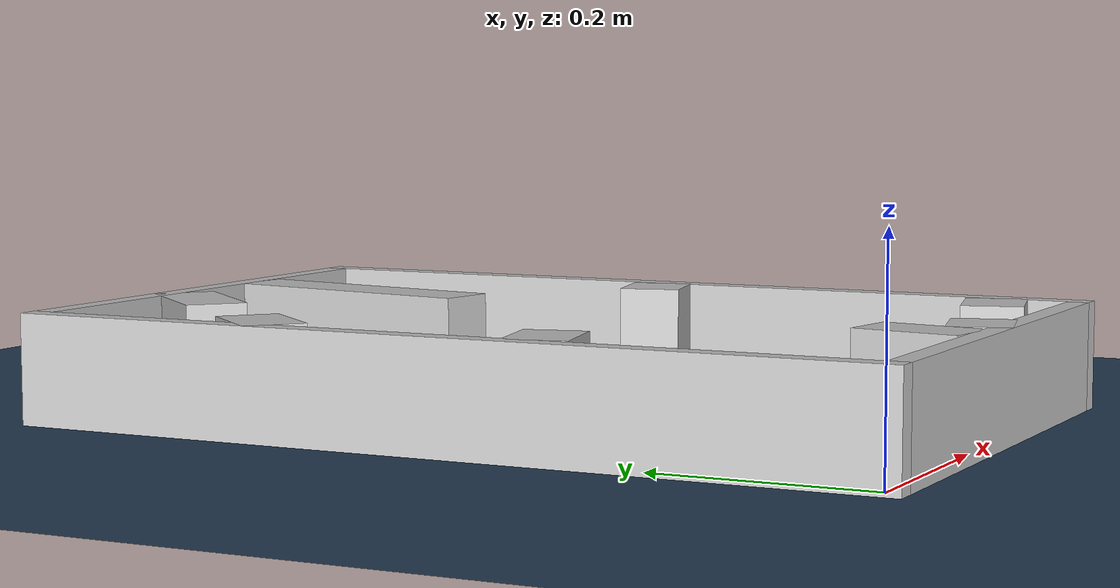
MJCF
<?xml version="1.0" ?>
<mujoco model="generated_real_template">
  <compiler angle="degree"/>
  <option timestep="0.002" integrator="implicitfast" iterations="100" cone="elliptic"/>
  <default>
    <geom density="1"/>
  </default>
  <asset>
    <texture builtin="gradient" height="3072" rgb1="0.3 0.5 0.7" rgb2="0 0 0" type="skybox" width="512"/>
    <texture builtin="checker" height="300" mark="edge" markrgb="0.8 0.8 0.8" name="groundplane" rgb1="0.2 0.3 0.4" rgb2="0.1 0.2 0.3" type="2d" width="300"/>
    <material name="groundplane" reflectance="0.2" texrepeat="5 5" texture="groundplane" texuniform="true"/>
  </asset>
  <worldbody>
    <light dir="0 0 -1" directional="true" pos="0 0 1.5"/>
    <geom name="floor" type="plane" condim="4" friction="0.5 0.005 0.001" material="groundplane" size="0 0 0.05"/>
    <body name="walls">
      <geom name="wall_boundary_left" type="box" condim="4" friction="1.0 0.005 0.0001" rgba="0.8 0.8 0.8 1" pos="-0.010000 0.387500 0.050000" euler="0 0 0.000000" size="0.010000 0.407500 0.050000"/>
      <geom name="wall_boundary_right" type="box" condim="4" friction="1.0 0.005 0.0001" rgba="0.8 0.8 0.8 1" pos="0.500000 0.387500 0.050000" euler="0 0 0.000000" size="0.010000 0.407500 0.050000"/>
      <geom name="wall_boundary_bottom" type="box" condim="4" friction="1.0 0.005 0.0001" rgba="0.8 0.8 0.8 1" pos="0.245000 -0.010000 0.050000" euler="0 0 0.000000" size="0.245000 0.010000 0.050000"/>
      <geom name="wall_boundary_top" type="box" condim="4" friction="1.0 0.005 0.0001" rgba="0.8 0.8 0.8 1" pos="0.245000 0.785000 0.050000" euler="0 0 0.000000" size="0.245000 0.010000 0.050000"/>
      <geom name="wall_inner_1_1" type="box" condim="4" friction="1.0 0.005 0.0001" rgba="0.8 0.8 0.8 1" pos="0.217191 0.048757 0.050000" euler="0 0 81.212754" size="0.049336 0.028500 0.050000"/>
      <geom name="wall_inner_1_2" type="box" condim="4" friction="1.0 0.005 0.0001" rgba="0.8 0.8 0.8 1" pos="0.309605 0.646593 0.050000" euler="0 0 81.212754" size="0.129932 0.028500 0.050000"/>
      <geom name="wall_inner_2_1" type="box" condim="4" friction="1.0 0.005 0.0001" rgba="0.8 0.8 0.8 1" pos="0.454650 0.058116 0.050000" euler="0 0 -166.233780" size="0.036396 0.028500 0.050000"/>
      <geom name="wall_inner_2_2" type="box" condim="4" friction="1.0 0.005 0.0001" rgba="0.8 0.8 0.8 1" pos="0.281762 0.015759 0.050000" euler="0 0 -166.233780" size="0.033939 0.028500 0.050000"/>
      <geom name="wall_inner_3_1" type="box" condim="4" friction="1.0 0.005 0.0001" rgba="0.8 0.8 0.8 1" pos="0.458602 0.400506 0.050000" euler="0 0 -167.273337" size="0.032189 0.028500 0.050000"/>
      <geom name="wall_inner_3_2" type="box" condim="4" friction="1.0 0.005 0.0001" rgba="0.8 0.8 0.8 1" pos="0.035781 0.305012 0.050000" euler="0 0 -167.273337" size="0.036682 0.028500 0.050000"/>
      <geom name="wall_inner_4_1" type="box" condim="4" friction="1.0 0.005 0.0001" rgba="0.8 0.8 0.8 1" pos="0.161211 0.730400 0.050000" euler="0 0 -130.516251" size="0.058667 0.028500 0.050000"/>
      <geom name="wall_inner_4_2" type="box" condim="4" friction="1.0 0.005 0.0001" rgba="0.8 0.8 0.8 1" pos="0.029197 0.575920 0.050000" euler="0 0 -130.516251" size="0.042375 0.028500 0.050000"/>
    </body>
  </worldbody>
</mujoco>
